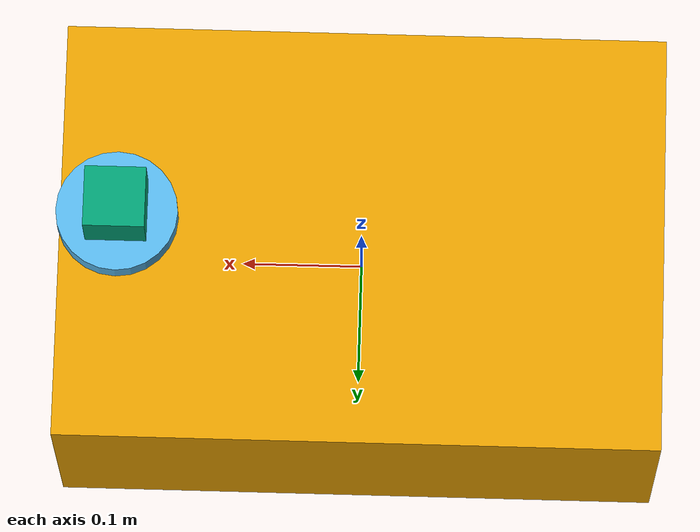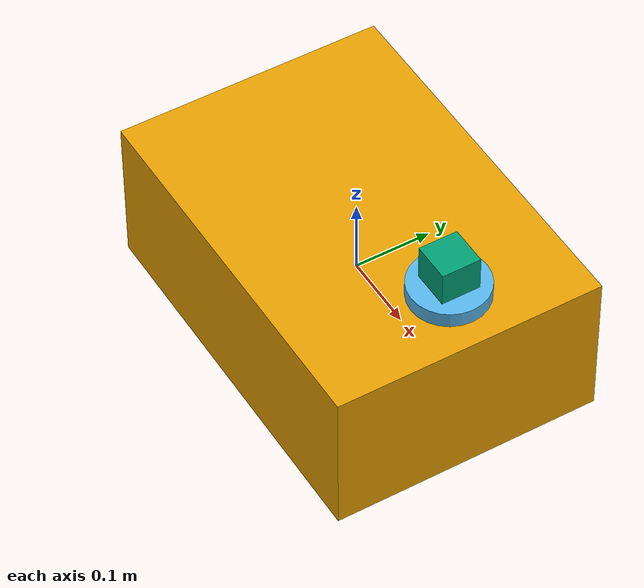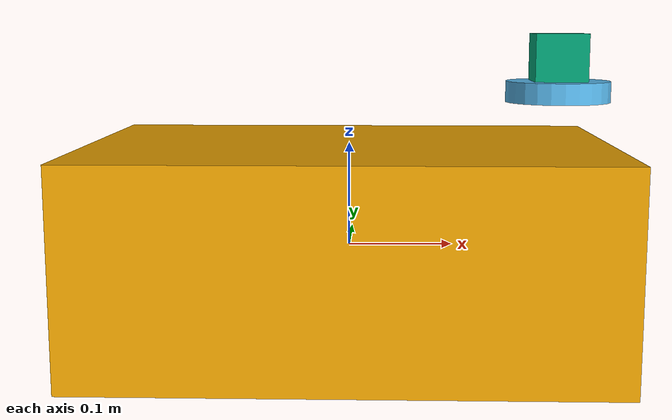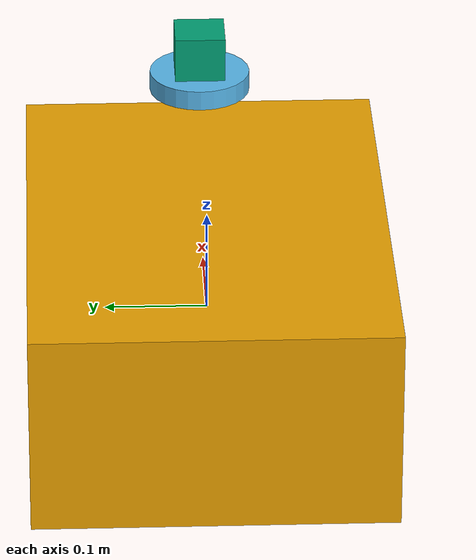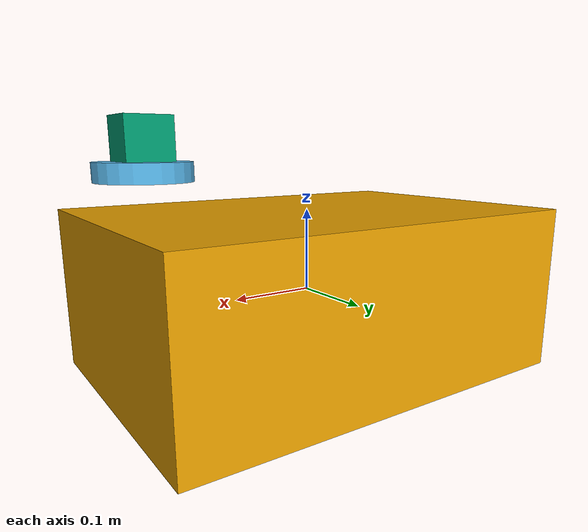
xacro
<?xml version="1.0"?>
<robot name="amr" xmlns:xacro="http://ros.org/wiki/xacro">
  <!-- Declare a property that can be overridden from CLI: xacro ... prefix:=robot1_ -->
  <xacro:property name="prefix" value=""/>

  <!-- Base -->
  <link name="${prefix}base_link">
    <inertial>
      <mass value="10"/>
      <origin xyz="0 0 0" rpy="0 0 0"/>
      <inertia ixx="1" ixy="0" ixz="0" iyy="1" iyz="0" izz="1"/>
    </inertial>
    <visual><geometry><box size="0.5 0.35 0.2"/></geometry></visual>
    <collision><geometry><box size="0.5 0.35 0.2"/></geometry></collision>
  </link>

  <!-- Lidar -->
  <link name="${prefix}lidar_link">
    <visual><geometry><cylinder radius="0.05" length="0.02"/></geometry></visual>
    <collision><geometry><cylinder radius="0.05" length="0.02"/></geometry></collision>
  </link>
  <joint name="${prefix}lidar_joint" type="fixed">
    <parent link="${prefix}base_link"/>
    <child link="${prefix}lidar_link"/>
    <origin xyz="0.2 0 0.15" rpy="0 0 0"/>
  </joint>

  <!-- Camera -->
  <link name="${prefix}camera_link">
    <visual><geometry><box size="0.05 0.05 0.05"/></geometry></visual>
    <collision><geometry><box size="0.05 0.05 0.05"/></geometry></collision>
  </link>
  <joint name="${prefix}camera_joint" type="fixed">
    <parent link="${prefix}base_link"/>
    <child link="${prefix}camera_link"/>
    <origin xyz="0.2 0 0.18" rpy="0 0 0"/>
  </joint>
</robot>
